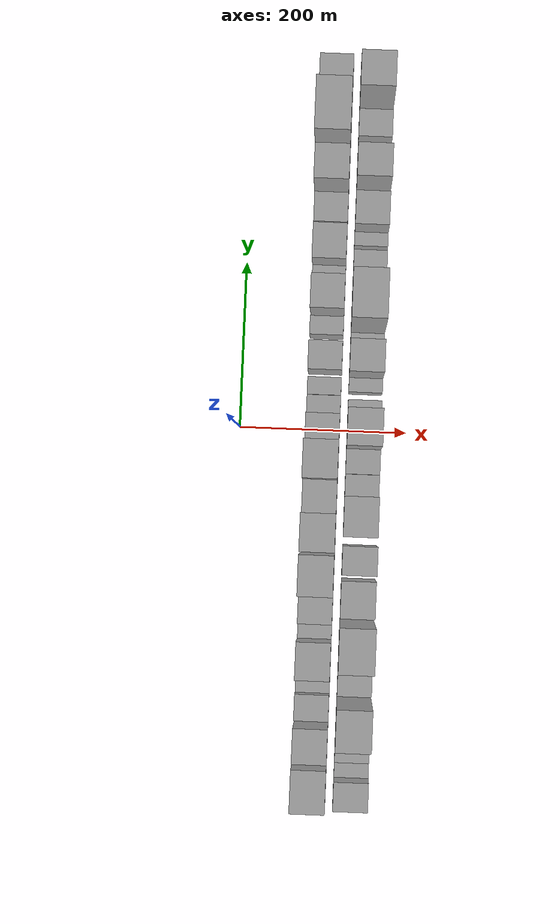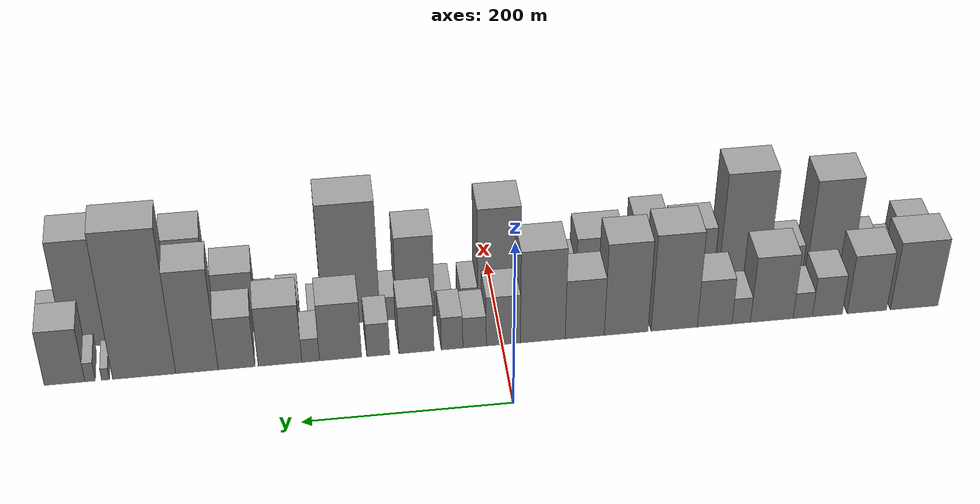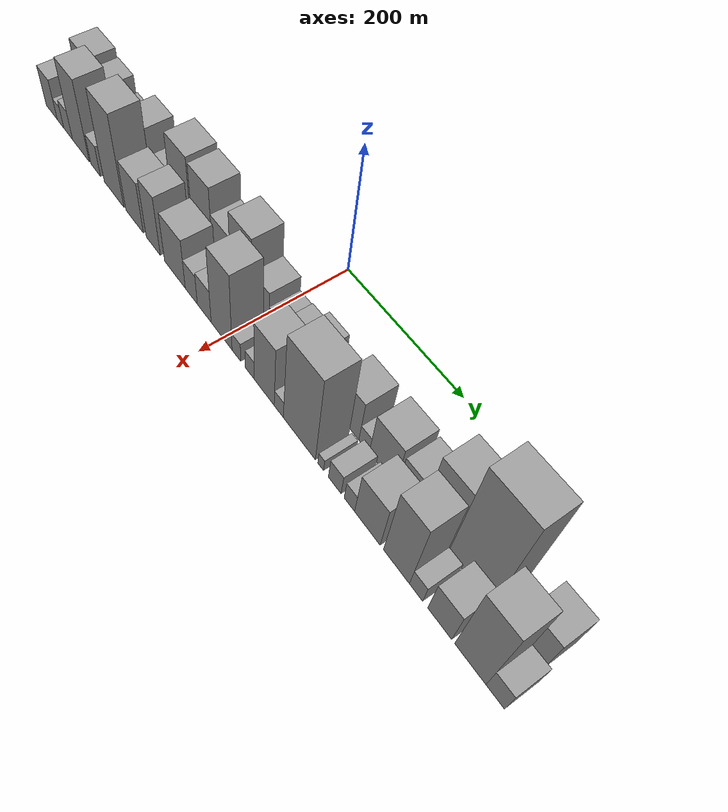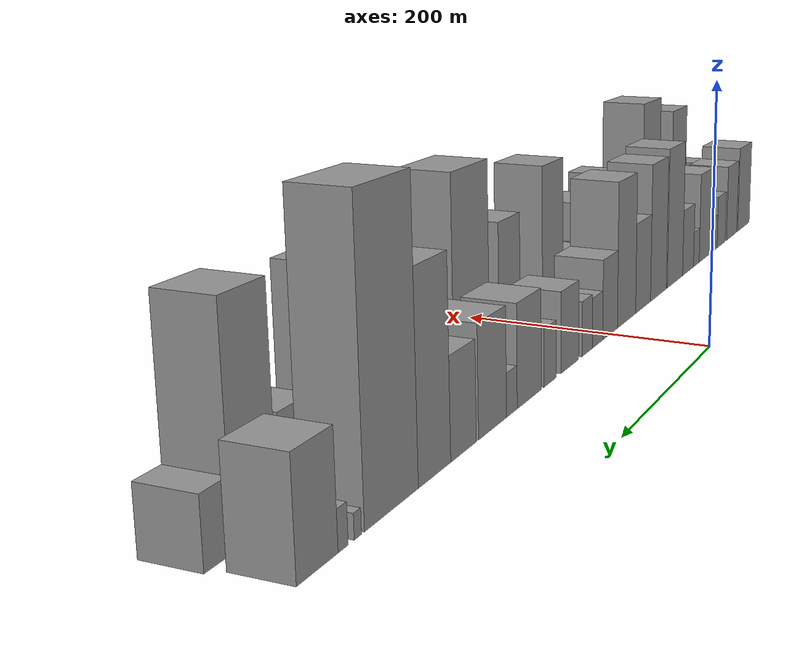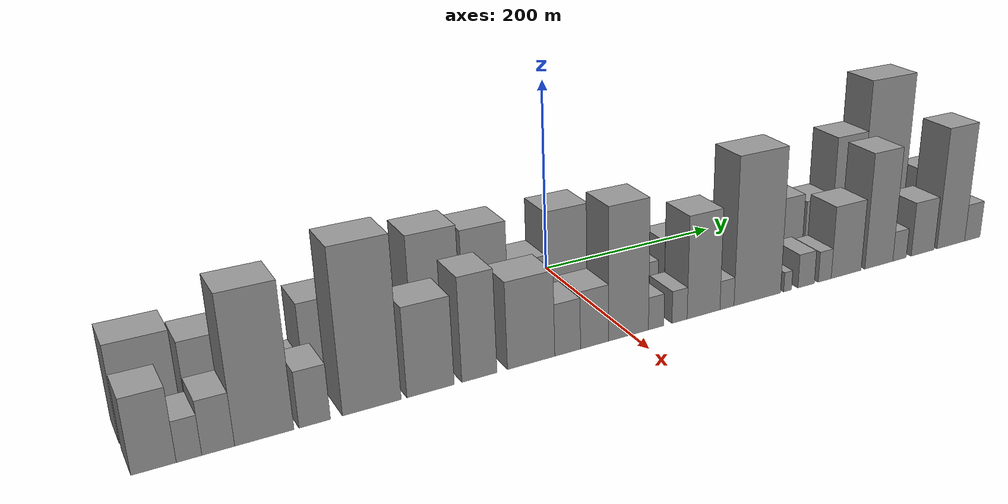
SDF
<sdf version="1.6">
 <world name="default">
  <scene>
   <sky><clouds><speed>12</speed></clouds></sky>
   <ambient>0.4 0.4 0.4 1</ambient>
   <background>0.7 0.7 0.7 1</background>
   <shadows>1</shadows>
  </scene>
  <gravity>0 0 -9.8066</gravity>
  <magnetic_field>6e-06 2.3e-05 -4.2e-05</magnetic_field>
  <physics default="0" name="default_physics" type="ode">
   <ode>
    <solver>
     <type>quick</type>
     <iters>10</iters>
     <sor>1.0</sor>
     <use_dynamic_moi_rescaling>0</use_dynamic_moi_rescaling>
    </solver>
    <constraints>
     <cfm>0</cfm>
     <erp>0.2</erp>
     <contact_max_correcting_vel>100</contact_max_correcting_vel>
     <contact_surface_layer>0.001</contact_surface_layer>
    </constraints>
   </ode>
   <max_step_size>0.004</max_step_size>
   <real_time_factor>1</real_time_factor>
   <real_time_update_rate>250</real_time_update_rate>
  </physics>
  <light name="sun" type="directional">
   <pose>0 0 10 0 0 0</pose>
   <diffuse>0.8 0.8 0.8 1</diffuse>
   <specular>0.2 0.2 0.2 1</specular>
   <attenuation>
    <range>1000</range>
    <constant>0.9</constant>
    <linear>0.01</linear>
    <quadratic>0.001</quadratic>
   </attenuation>
   <direction>-0.5 0.1 -0.9</direction>
  </light>
  <model name="building_1">
   <static>1</static>
   <pose>100.0000 -413.6553 0 0.000000 0.000000 0.000000</pose>
   <link name="link">
    <pose>0 0 43.50 0 0 0</pose>
    <collision name="collision"><geometry><box><size>40.0000 48.6893 87.0000</size></box></geometry></collision>
    <visual name="visual">
     <cast_shadows>0</cast_shadows>
     <geometry><box><size>40.0000 48.6893 87.0000</size></box></geometry>
     <material>
      <script>
       <uri>model://grey_wall/materials/scripts</uri>
       <uri>model://grey_wall/materials/textures</uri>
       <name>vrc/grey_wall</name>
      </script>
     </material>
    </visual>
   </link>
  </model>
  <model name="building_2">
   <static>1</static>
   <pose>100.0000 -365.2455 0 0.000000 0.000000 0.000000</pose>
   <link name="link">
    <pose>0 0 37.50 0 0 0</pose>
    <collision name="collision"><geometry><box><size>40.0000 40.1303 75.0000</size></box></geometry></collision>
    <visual name="visual">
     <cast_shadows>0</cast_shadows>
     <geometry><box><size>40.0000 40.1303 75.0000</size></box></geometry>
     <material>
      <script>
       <uri>model://grey_wall/materials/scripts</uri>
       <uri>model://grey_wall/materials/textures</uri>
       <name>vrc/grey_wall</name>
      </script>
     </material>
    </visual>
   </link>
  </model>
  <model name="building_3">
   <static>1</static>
   <pose>100.0000 -324.9084 0 0.000000 0.000000 0.000000</pose>
   <link name="link">
    <pose>0 0 25.50 0 0 0</pose>
    <collision name="collision"><geometry><box><size>40.0000 30.5440 51.0000</size></box></geometry></collision>
    <visual name="visual">
     <cast_shadows>0</cast_shadows>
     <geometry><box><size>40.0000 30.5440 51.0000</size></box></geometry>
     <material>
      <script>
       <uri>model://grey_wall/materials/scripts</uri>
       <uri>model://grey_wall/materials/textures</uri>
       <name>vrc/grey_wall</name>
      </script>
     </material>
    </visual>
   </link>
  </model>
  <model name="building_4">
   <static>1</static>
   <pose>100.0000 -299.9130 0 0.000000 0.000000 0.000000</pose>
   <link name="link">
    <pose>0 0 16.50 0 0 0</pose>
    <collision name="collision"><geometry><box><size>40.0000 19.4467 33.0000</size></box></geometry></collision>
    <visual name="visual">
     <cast_shadows>0</cast_shadows>
     <geometry><box><size>40.0000 19.4467 33.0000</size></box></geometry>
     <material>
      <script>
       <uri>model://grey_wall/materials/scripts</uri>
       <uri>model://grey_wall/materials/textures</uri>
       <name>vrc/grey_wall</name>
      </script>
     </material>
    </visual>
   </link>
  </model>
  <model name="building_5">
   <static>1</static>
   <pose>100.0000 -268.5683 0 0.000000 0.000000 0.000000</pose>
   <link name="link">
    <pose>0 0 42.00 0 0 0</pose>
    <collision name="collision"><geometry><box><size>40.0000 43.2427 84.0000</size></box></geometry></collision>
    <visual name="visual">
     <cast_shadows>0</cast_shadows>
     <geometry><box><size>40.0000 43.2427 84.0000</size></box></geometry>
     <material>
      <script>
       <uri>model://grey_wall/materials/scripts</uri>
       <uri>model://grey_wall/materials/textures</uri>
       <name>vrc/grey_wall</name>
      </script>
     </material>
    </visual>
   </link>
  </model>
  <model name="building_6">
   <static>1</static>
   <pose>100.0000 -237.6794 0 0.000000 0.000000 0.000000</pose>
   <link name="link">
    <pose>0 0 16.50 0 0 0</pose>
    <collision name="collision"><geometry><box><size>40.0000 18.5353 33.0000</size></box></geometry></collision>
    <visual name="visual">
     <cast_shadows>0</cast_shadows>
     <geometry><box><size>40.0000 18.5353 33.0000</size></box></geometry>
     <material>
      <script>
       <uri>model://grey_wall/materials/scripts</uri>
       <uri>model://grey_wall/materials/textures</uri>
       <name>vrc/grey_wall</name>
      </script>
     </material>
    </visual>
   </link>
  </model>
  <model name="building_7">
   <static>1</static>
   <pose>100.0000 -210.9721 0 0.000000 0.000000 0.000000</pose>
   <link name="link">
    <pose>0 0 30.00 0 0 0</pose>
    <collision name="collision"><geometry><box><size>40.0000 34.8792 60.0000</size></box></geometry></collision>
    <visual name="visual">
     <cast_shadows>0</cast_shadows>
     <geometry><box><size>40.0000 34.8792 60.0000</size></box></geometry>
     <material>
      <script>
       <uri>model://grey_wall/materials/scripts</uri>
       <uri>model://grey_wall/materials/textures</uri>
       <name>vrc/grey_wall</name>
      </script>
     </material>
    </visual>
   </link>
  </model>
  <model name="building_8">
   <static>1</static>
   <pose>100.0000 -170.4221 0 0.000000 0.000000 0.000000</pose>
   <link name="link">
    <pose>0 0 61.50 0 0 0</pose>
    <collision name="collision"><geometry><box><size>40.0000 46.2209 123.0000</size></box></geometry></collision>
    <visual name="visual">
     <cast_shadows>0</cast_shadows>
     <geometry><box><size>40.0000 46.2209 123.0000</size></box></geometry>
     <material>
      <script>
       <uri>model://grey_wall/materials/scripts</uri>
       <uri>model://grey_wall/materials/textures</uri>
       <name>vrc/grey_wall</name>
      </script>
     </material>
    </visual>
   </link>
  </model>
  <model name="building_9">
   <static>1</static>
   <pose>100.0000 -122.4812 0 0.000000 0.000000 0.000000</pose>
   <link name="link">
    <pose>0 0 58.50 0 0 0</pose>
    <collision name="collision"><geometry><box><size>40.0000 43.6609 117.0000</size></box></geometry></collision>
    <visual name="visual">
     <cast_shadows>0</cast_shadows>
     <geometry><box><size>40.0000 43.6609 117.0000</size></box></geometry>
     <material>
      <script>
       <uri>model://grey_wall/materials/scripts</uri>
       <uri>model://grey_wall/materials/textures</uri>
       <name>vrc/grey_wall</name>
      </script>
     </material>
    </visual>
   </link>
  </model>
  <model name="building_10">
   <static>1</static>
   <pose>100.0000 -81.2429 0 0.000000 0.000000 0.000000</pose>
   <link name="link">
    <pose>0 0 37.50 0 0 0</pose>
    <collision name="collision"><geometry><box><size>40.0000 38.8155 75.0000</size></box></geometry></collision>
    <visual name="visual">
     <cast_shadows>0</cast_shadows>
     <geometry><box><size>40.0000 38.8155 75.0000</size></box></geometry>
     <material>
      <script>
       <uri>model://grey_wall/materials/scripts</uri>
       <uri>model://grey_wall/materials/textures</uri>
       <name>vrc/grey_wall</name>
      </script>
     </material>
    </visual>
   </link>
  </model>
  <model name="building_11">
   <static>1</static>
   <pose>100.0000 -39.6553 0 0.000000 0.000000 0.000000</pose>
   <link name="link">
    <pose>0 0 58.50 0 0 0</pose>
    <collision name="collision"><geometry><box><size>40.0000 44.3598 117.0000</size></box></geometry></collision>
    <visual name="visual">
     <cast_shadows>0</cast_shadows>
     <geometry><box><size>40.0000 44.3598 117.0000</size></box></geometry>
     <material>
      <script>
       <uri>model://grey_wall/materials/scripts</uri>
       <uri>model://grey_wall/materials/textures</uri>
       <name>vrc/grey_wall</name>
      </script>
     </material>
    </visual>
   </link>
  </model>
  <model name="building_12">
   <static>1</static>
   <pose>100.0000 -0.7453 0 0.000000 0.000000 0.000000</pose>
   <link name="link">
    <pose>0 0 31.50 0 0 0</pose>
    <collision name="collision"><geometry><box><size>40.0000 33.4600 63.0000</size></box></geometry></collision>
    <visual name="visual">
     <cast_shadows>0</cast_shadows>
     <geometry><box><size>40.0000 33.4600 63.0000</size></box></geometry>
     <material>
      <script>
       <uri>model://grey_wall/materials/scripts</uri>
       <uri>model://grey_wall/materials/textures</uri>
       <name>vrc/grey_wall</name>
      </script>
     </material>
    </visual>
   </link>
  </model>
  <model name="building_13">
   <static>1</static>
   <pose>100.0000 27.4380 0 0.000000 0.000000 0.000000</pose>
   <link name="link">
    <pose>0 0 19.50 0 0 0</pose>
    <collision name="collision"><geometry><box><size>40.0000 22.9066 39.0000</size></box></geometry></collision>
    <visual name="visual">
     <cast_shadows>0</cast_shadows>
     <geometry><box><size>40.0000 22.9066 39.0000</size></box></geometry>
     <material>
      <script>
       <uri>model://grey_wall/materials/scripts</uri>
       <uri>model://grey_wall/materials/textures</uri>
       <name>vrc/grey_wall</name>
      </script>
     </material>
    </visual>
   </link>
  </model>
  <model name="building_14">
   <static>1</static>
   <pose>100.0000 49.4499 0 0.000000 0.000000 0.000000</pose>
   <link name="link">
    <pose>0 0 21.00 0 0 0</pose>
    <collision name="collision"><geometry><box><size>40.0000 21.1173 42.0000</size></box></geometry></collision>
    <visual name="visual">
     <cast_shadows>0</cast_shadows>
     <geometry><box><size>40.0000 21.1173 42.0000</size></box></geometry>
     <material>
      <script>
       <uri>model://grey_wall/materials/scripts</uri>
       <uri>model://grey_wall/materials/textures</uri>
       <name>vrc/grey_wall</name>
      </script>
     </material>
    </visual>
   </link>
  </model>
  <model name="building_15">
   <static>1</static>
   <pose>100.0000 84.1552 0 0.000000 0.000000 0.000000</pose>
   <link name="link">
    <pose>0 0 30.00 0 0 0</pose>
    <collision name="collision"><geometry><box><size>40.0000 34.2933 60.0000</size></box></geometry></collision>
    <visual name="visual">
     <cast_shadows>0</cast_shadows>
     <geometry><box><size>40.0000 34.2933 60.0000</size></box></geometry>
     <material>
      <script>
       <uri>model://grey_wall/materials/scripts</uri>
       <uri>model://grey_wall/materials/textures</uri>
       <name>vrc/grey_wall</name>
      </script>
     </material>
    </visual>
   </link>
  </model>
  <model name="building_16">
   <static>1</static>
   <pose>100.0000 121.4311 0 0.000000 0.000000 0.000000</pose>
   <link name="link">
    <pose>0 0 21.00 0 0 0</pose>
    <collision name="collision"><geometry><box><size>40.0000 22.2585 42.0000</size></box></geometry></collision>
    <visual name="visual">
     <cast_shadows>0</cast_shadows>
     <geometry><box><size>40.0000 22.2585 42.0000</size></box></geometry>
     <material>
      <script>
       <uri>model://grey_wall/materials/scripts</uri>
       <uri>model://grey_wall/materials/textures</uri>
       <name>vrc/grey_wall</name>
      </script>
     </material>
    </visual>
   </link>
  </model>
  <model name="building_17">
   <static>1</static>
   <pose>100.0000 157.9445 0 0.000000 0.000000 0.000000</pose>
   <link name="link">
    <pose>0 0 36.00 0 0 0</pose>
    <collision name="collision"><geometry><box><size>40.0000 40.7683 72.0000</size></box></geometry></collision>
    <visual name="visual">
     <cast_shadows>0</cast_shadows>
     <geometry><box><size>40.0000 40.7683 72.0000</size></box></geometry>
     <material>
      <script>
       <uri>model://grey_wall/materials/scripts</uri>
       <uri>model://grey_wall/materials/textures</uri>
       <name>vrc/grey_wall</name>
      </script>
     </material>
    </visual>
   </link>
  </model>
  <model name="building_18">
   <static>1</static>
   <pose>100.0000 186.8226 0 0.000000 0.000000 0.000000</pose>
   <link name="link">
    <pose>0 0 15.00 0 0 0</pose>
    <collision name="collision"><geometry><box><size>40.0000 16.9878 30.0000</size></box></geometry></collision>
    <visual name="visual">
     <cast_shadows>0</cast_shadows>
     <geometry><box><size>40.0000 16.9878 30.0000</size></box></geometry>
     <material>
      <script>
       <uri>model://grey_wall/materials/scripts</uri>
       <uri>model://grey_wall/materials/textures</uri>
       <name>vrc/grey_wall</name>
      </script>
     </material>
    </visual>
   </link>
  </model>
  <model name="building_19">
   <static>1</static>
   <pose>100.0000 216.3093 0 0.000000 0.000000 0.000000</pose>
   <link name="link">
    <pose>0 0 37.50 0 0 0</pose>
    <collision name="collision"><geometry><box><size>40.0000 41.9856 75.0000</size></box></geometry></collision>
    <visual name="visual">
     <cast_shadows>0</cast_shadows>
     <geometry><box><size>40.0000 41.9856 75.0000</size></box></geometry>
     <material>
      <script>
       <uri>model://grey_wall/materials/scripts</uri>
       <uri>model://grey_wall/materials/textures</uri>
       <name>vrc/grey_wall</name>
      </script>
     </material>
    </visual>
   </link>
  </model>
  <model name="building_20">
   <static>1</static>
   <pose>100.0000 257.9181 0 0.000000 0.000000 0.000000</pose>
   <link name="link">
    <pose>0 0 33.00 0 0 0</pose>
    <collision name="collision"><geometry><box><size>40.0000 35.2319 66.0000</size></box></geometry></collision>
    <visual name="visual">
     <cast_shadows>0</cast_shadows>
     <geometry><box><size>40.0000 35.2319 66.0000</size></box></geometry>
     <material>
      <script>
       <uri>model://grey_wall/materials/scripts</uri>
       <uri>model://grey_wall/materials/textures</uri>
       <name>vrc/grey_wall</name>
      </script>
     </material>
    </visual>
   </link>
  </model>
  <model name="building_21">
   <static>1</static>
   <pose>100.0000 295.8284 0 0.000000 0.000000 0.000000</pose>
   <link name="link">
    <pose>0 0 64.50 0 0 0</pose>
    <collision name="collision"><geometry><box><size>40.0000 40.5886 129.0000</size></box></geometry></collision>
    <visual name="visual">
     <cast_shadows>0</cast_shadows>
     <geometry><box><size>40.0000 40.5886 129.0000</size></box></geometry>
     <material>
      <script>
       <uri>model://grey_wall/materials/scripts</uri>
       <uri>model://grey_wall/materials/textures</uri>
       <name>vrc/grey_wall</name>
      </script>
     </material>
    </visual>
   </link>
  </model>
  <model name="building_22">
   <static>1</static>
   <pose>100.0000 346.0751 0 0.000000 0.000000 0.000000</pose>
   <link name="link">
    <pose>0 0 91.50 0 0 0</pose>
    <collision name="collision"><geometry><box><size>40.0000 59.9049 183.0000</size></box></geometry></collision>
    <visual name="visual">
     <cast_shadows>0</cast_shadows>
     <geometry><box><size>40.0000 59.9049 183.0000</size></box></geometry>
     <material>
      <script>
       <uri>model://grey_wall/materials/scripts</uri>
       <uri>model://grey_wall/materials/textures</uri>
       <name>vrc/grey_wall</name>
      </script>
     </material>
    </visual>
   </link>
  </model>
  <model name="building_23">
   <static>1</static>
   <pose>100.0000 382.7169 0 0.000000 0.000000 0.000000</pose>
   <link name="link">
    <pose>0 0 7.50 0 0 0</pose>
    <collision name="collision"><geometry><box><size>40.0000 7.3787 15.0000</size></box></geometry></collision>
    <visual name="visual">
     <cast_shadows>0</cast_shadows>
     <geometry><box><size>40.0000 7.3787 15.0000</size></box></geometry>
     <material>
      <script>
       <uri>model://grey_wall/materials/scripts</uri>
       <uri>model://grey_wall/materials/textures</uri>
       <name>vrc/grey_wall</name>
      </script>
     </material>
    </visual>
   </link>
  </model>
  <model name="building_24">
   <static>1</static>
   <pose>100.0000 397.3403 0 0.000000 0.000000 0.000000</pose>
   <link name="link">
    <pose>0 0 12.00 0 0 0</pose>
    <collision name="collision"><geometry><box><size>40.0000 9.8680 24.0000</size></box></geometry></collision>
    <visual name="visual">
     <cast_shadows>0</cast_shadows>
     <geometry><box><size>40.0000 9.8680 24.0000</size></box></geometry>
     <material>
      <script>
       <uri>model://grey_wall/materials/scripts</uri>
       <uri>model://grey_wall/materials/textures</uri>
       <name>vrc/grey_wall</name>
      </script>
     </material>
    </visual>
   </link>
  </model>
  <model name="building_25">
   <static>1</static>
   <pose>100.0000 421.3536 0 0.000000 0.000000 0.000000</pose>
   <link name="link">
    <pose>0 0 34.50 0 0 0</pose>
    <collision name="collision"><geometry><box><size>40.0000 38.1586 69.0000</size></box></geometry></collision>
    <visual name="visual">
     <cast_shadows>0</cast_shadows>
     <geometry><box><size>40.0000 38.1586 69.0000</size></box></geometry>
     <material>
      <script>
       <uri>model://grey_wall/materials/scripts</uri>
       <uri>model://grey_wall/materials/textures</uri>
       <name>vrc/grey_wall</name>
      </script>
     </material>
    </visual>
   </link>
  </model>
  <model name="building_26">
   <static>1</static>
   <pose>149.0000 -421.4906 0 0.000000 0.000000 0.000000</pose>
   <link name="link">
    <pose>0 0 33.00 0 0 0</pose>
    <collision name="collision"><geometry><box><size>40.0000 33.0188 66.0000</size></box></geometry></collision>
    <visual name="visual">
     <cast_shadows>0</cast_shadows>
     <geometry><box><size>40.0000 33.0188 66.0000</size></box></geometry>
     <material>
      <script>
       <uri>model://grey_wall/materials/scripts</uri>
       <uri>model://grey_wall/materials/textures</uri>
       <name>vrc/grey_wall</name>
      </script>
     </material>
    </visual>
   </link>
  </model>
  <model name="building_27">
   <static>1</static>
   <pose>149.0000 -395.5111 0 0.000000 0.000000 0.000000</pose>
   <link name="link">
    <pose>0 0 18.00 0 0 0</pose>
    <collision name="collision"><geometry><box><size>40.0000 18.9402 36.0000</size></box></geometry></collision>
    <visual name="visual">
     <cast_shadows>0</cast_shadows>
     <geometry><box><size>40.0000 18.9402 36.0000</size></box></geometry>
     <material>
      <script>
       <uri>model://grey_wall/materials/scripts</uri>
       <uri>model://grey_wall/materials/textures</uri>
       <name>vrc/grey_wall</name>
      </script>
     </material>
    </visual>
   </link>
  </model>
  <model name="building_28">
   <static>1</static>
   <pose>149.0000 -373.5439 0 0.000000 0.000000 0.000000</pose>
   <link name="link">
    <pose>0 0 24.00 0 0 0</pose>
    <collision name="collision"><geometry><box><size>40.0000 24.9943 48.0000</size></box></geometry></collision>
    <visual name="visual">
     <cast_shadows>0</cast_shadows>
     <geometry><box><size>40.0000 24.9943 48.0000</size></box></geometry>
     <material>
      <script>
       <uri>model://grey_wall/materials/scripts</uri>
       <uri>model://grey_wall/materials/textures</uri>
       <name>vrc/grey_wall</name>
      </script>
     </material>
    </visual>
   </link>
  </model>
  <model name="building_29">
   <static>1</static>
   <pose>149.0000 -337.7166 0 0.000000 0.000000 0.000000</pose>
   <link name="link">
    <pose>0 0 66.00 0 0 0</pose>
    <collision name="collision"><geometry><box><size>40.0000 46.6603 132.0000</size></box></geometry></collision>
    <visual name="visual">
     <cast_shadows>0</cast_shadows>
     <geometry><box><size>40.0000 46.6603 132.0000</size></box></geometry>
     <material>
      <script>
       <uri>model://grey_wall/materials/scripts</uri>
       <uri>model://grey_wall/materials/textures</uri>
       <name>vrc/grey_wall</name>
      </script>
     </material>
    </visual>
   </link>
  </model>
  <model name="building_30">
   <static>1</static>
   <pose>149.0000 -297.4726 0 0.000000 0.000000 0.000000</pose>
   <link name="link">
    <pose>0 0 25.50 0 0 0</pose>
    <collision name="collision"><geometry><box><size>40.0000 25.8277 51.0000</size></box></geometry></collision>
    <visual name="visual">
     <cast_shadows>0</cast_shadows>
     <geometry><box><size>40.0000 25.8277 51.0000</size></box></geometry>
     <material>
      <script>
       <uri>model://grey_wall/materials/scripts</uri>
       <uri>model://grey_wall/materials/textures</uri>
       <name>vrc/grey_wall</name>
      </script>
     </material>
    </visual>
   </link>
  </model>
  <model name="building_31">
   <static>1</static>
   <pose>149.0000 -249.3215 0 0.000000 0.000000 0.000000</pose>
   <link name="link">
    <pose>0 0 75.00 0 0 0</pose>
    <collision name="collision"><geometry><box><size>40.0000 50.4745 150.0000</size></box></geometry></collision>
    <visual name="visual">
     <cast_shadows>0</cast_shadows>
     <geometry><box><size>40.0000 50.4745 150.0000</size></box></geometry>
     <material>
      <script>
       <uri>model://grey_wall/materials/scripts</uri>
       <uri>model://grey_wall/materials/textures</uri>
       <name>vrc/grey_wall</name>
      </script>
     </material>
    </visual>
   </link>
  </model>
  <model name="building_32">
   <static>1</static>
   <pose>149.0000 -197.7166 0 0.000000 0.000000 0.000000</pose>
   <link name="link">
    <pose>0 0 42.00 0 0 0</pose>
    <collision name="collision"><geometry><box><size>40.0000 42.7352 84.0000</size></box></geometry></collision>
    <visual name="visual">
     <cast_shadows>0</cast_shadows>
     <geometry><box><size>40.0000 42.7352 84.0000</size></box></geometry>
     <material>
      <script>
       <uri>model://grey_wall/materials/scripts</uri>
       <uri>model://grey_wall/materials/textures</uri>
       <name>vrc/grey_wall</name>
      </script>
     </material>
    </visual>
   </link>
  </model>
  <model name="building_33">
   <static>1</static>
   <pose>149.0000 -152.8325 0 0.000000 0.000000 0.000000</pose>
   <link name="link">
    <pose>0 0 49.50 0 0 0</pose>
    <collision name="collision"><geometry><box><size>40.0000 33.0331 99.0000</size></box></geometry></collision>
    <visual name="visual">
     <cast_shadows>0</cast_shadows>
     <geometry><box><size>40.0000 33.0331 99.0000</size></box></geometry>
     <material>
      <script>
       <uri>model://grey_wall/materials/scripts</uri>
       <uri>model://grey_wall/materials/textures</uri>
       <name>vrc/grey_wall</name>
      </script>
     </material>
    </visual>
   </link>
  </model>
  <model name="building_34">
   <static>1</static>
   <pose>149.0000 -103.0386 0 0.000000 0.000000 0.000000</pose>
   <link name="link">
    <pose>0 0 42.00 0 0 0</pose>
    <collision name="collision"><geometry><box><size>40.0000 46.5549 84.0000</size></box></geometry></collision>
    <visual name="visual">
     <cast_shadows>0</cast_shadows>
     <geometry><box><size>40.0000 46.5549 84.0000</size></box></geometry>
     <material>
      <script>
       <uri>model://grey_wall/materials/scripts</uri>
       <uri>model://grey_wall/materials/textures</uri>
       <name>vrc/grey_wall</name>
      </script>
     </material>
    </visual>
   </link>
  </model>
  <model name="building_35">
   <static>1</static>
   <pose>149.0000 -66.7099 0 0.000000 0.000000 0.000000</pose>
   <link name="link">
    <pose>0 0 25.50 0 0 0</pose>
    <collision name="collision"><geometry><box><size>40.0000 26.1024 51.0000</size></box></geometry></collision>
    <visual name="visual">
     <cast_shadows>0</cast_shadows>
     <geometry><box><size>40.0000 26.1024 51.0000</size></box></geometry>
     <material>
      <script>
       <uri>model://grey_wall/materials/scripts</uri>
       <uri>model://grey_wall/materials/textures</uri>
       <name>vrc/grey_wall</name>
      </script>
     </material>
    </visual>
   </link>
  </model>
  <model name="building_36">
   <static>1</static>
   <pose>149.0000 -38.9653 0 0.000000 0.000000 0.000000</pose>
   <link name="link">
    <pose>0 0 28.50 0 0 0</pose>
    <collision name="collision"><geometry><box><size>40.0000 29.3869 57.0000</size></box></geometry></collision>
    <visual name="visual">
     <cast_shadows>0</cast_shadows>
     <geometry><box><size>40.0000 29.3869 57.0000</size></box></geometry>
     <material>
      <script>
       <uri>model://grey_wall/materials/scripts</uri>
       <uri>model://grey_wall/materials/textures</uri>
       <name>vrc/grey_wall</name>
      </script>
     </material>
    </visual>
   </link>
  </model>
  <model name="building_37">
   <static>1</static>
   <pose>149.0000 -2.9895 0 0.000000 0.000000 0.000000</pose>
   <link name="link">
    <pose>0 0 66.00 0 0 0</pose>
    <collision name="collision"><geometry><box><size>40.0000 42.5646 132.0000</size></box></geometry></collision>
    <visual name="visual">
     <cast_shadows>0</cast_shadows>
     <geometry><box><size>40.0000 42.5646 132.0000</size></box></geometry>
     <material>
      <script>
       <uri>model://grey_wall/materials/scripts</uri>
       <uri>model://grey_wall/materials/textures</uri>
       <name>vrc/grey_wall</name>
      </script>
     </material>
    </visual>
   </link>
  </model>
  <model name="building_38">
   <static>1</static>
   <pose>149.0000 26.8142 0 0.000000 0.000000 0.000000</pose>
   <link name="link">
    <pose>0 0 16.50 0 0 0</pose>
    <collision name="collision"><geometry><box><size>40.0000 17.0428 33.0000</size></box></geometry></collision>
    <visual name="visual">
     <cast_shadows>0</cast_shadows>
     <geometry><box><size>40.0000 17.0428 33.0000</size></box></geometry>
     <material>
      <script>
       <uri>model://grey_wall/materials/scripts</uri>
       <uri>model://grey_wall/materials/textures</uri>
       <name>vrc/grey_wall</name>
      </script>
     </material>
    </visual>
   </link>
  </model>
  <model name="building_39">
   <static>1</static>
   <pose>149.0000 52.8453 0 0.000000 0.000000 0.000000</pose>
   <link name="link">
    <pose>0 0 16.50 0 0 0</pose>
    <collision name="collision"><geometry><box><size>40.0000 17.0194 33.0000</size></box></geometry></collision>
    <visual name="visual">
     <cast_shadows>0</cast_shadows>
     <geometry><box><size>40.0000 17.0194 33.0000</size></box></geometry>
     <material>
      <script>
       <uri>model://grey_wall/materials/scripts</uri>
       <uri>model://grey_wall/materials/textures</uri>
       <name>vrc/grey_wall</name>
      </script>
     </material>
    </visual>
   </link>
  </model>
  <model name="building_40">
   <static>1</static>
   <pose>149.0000 80.2099 0 0.000000 0.000000 0.000000</pose>
   <link name="link">
    <pose>0 0 52.50 0 0 0</pose>
    <collision name="collision"><geometry><box><size>40.0000 37.7097 105.0000</size></box></geometry></collision>
    <visual name="visual">
     <cast_shadows>0</cast_shadows>
     <geometry><box><size>40.0000 37.7097 105.0000</size></box></geometry>
     <material>
      <script>
       <uri>model://grey_wall/materials/scripts</uri>
       <uri>model://grey_wall/materials/textures</uri>
       <name>vrc/grey_wall</name>
      </script>
     </material>
    </visual>
   </link>
  </model>
  <model name="building_41">
   <static>1</static>
   <pose>149.0000 107.3474 0 0.000000 0.000000 0.000000</pose>
   <link name="link">
    <pose>0 0 15.00 0 0 0</pose>
    <collision name="collision"><geometry><box><size>40.0000 16.5652 30.0000</size></box></geometry></collision>
    <visual name="visual">
     <cast_shadows>0</cast_shadows>
     <geometry><box><size>40.0000 16.5652 30.0000</size></box></geometry>
     <material>
      <script>
       <uri>model://grey_wall/materials/scripts</uri>
       <uri>model://grey_wall/materials/textures</uri>
       <name>vrc/grey_wall</name>
      </script>
     </material>
    </visual>
   </link>
  </model>
  <model name="building_42">
   <static>1</static>
   <pose>149.0000 143.8229 0 0.000000 0.000000 0.000000</pose>
   <link name="link">
    <pose>0 0 76.50 0 0 0</pose>
    <collision name="collision"><geometry><box><size>40.0000 56.3859 153.0000</size></box></geometry></collision>
    <visual name="visual">
     <cast_shadows>0</cast_shadows>
     <geometry><box><size>40.0000 56.3859 153.0000</size></box></geometry>
     <material>
      <script>
       <uri>model://grey_wall/materials/scripts</uri>
       <uri>model://grey_wall/materials/textures</uri>
       <name>vrc/grey_wall</name>
      </script>
     </material>
    </visual>
   </link>
  </model>
  <model name="building_43">
   <static>1</static>
   <pose>149.0000 180.9305 0 0.000000 0.000000 0.000000</pose>
   <link name="link">
    <pose>0 0 10.50 0 0 0</pose>
    <collision name="collision"><geometry><box><size>40.0000 9.8292 21.0000</size></box></geometry></collision>
    <visual name="visual">
     <cast_shadows>0</cast_shadows>
     <geometry><box><size>40.0000 9.8292 21.0000</size></box></geometry>
     <material>
      <script>
       <uri>model://grey_wall/materials/scripts</uri>
       <uri>model://grey_wall/materials/textures</uri>
       <name>vrc/grey_wall</name>
      </script>
     </material>
    </visual>
   </link>
  </model>
  <model name="building_44">
   <static>1</static>
   <pose>149.0000 204.2857 0 0.000000 0.000000 0.000000</pose>
   <link name="link">
    <pose>0 0 18.00 0 0 0</pose>
    <collision name="collision"><geometry><box><size>40.0000 20.8811 36.0000</size></box></geometry></collision>
    <visual name="visual">
     <cast_shadows>0</cast_shadows>
     <geometry><box><size>40.0000 20.8811 36.0000</size></box></geometry>
     <material>
      <script>
       <uri>model://grey_wall/materials/scripts</uri>
       <uri>model://grey_wall/materials/textures</uri>
       <name>vrc/grey_wall</name>
      </script>
     </material>
    </visual>
   </link>
  </model>
  <model name="building_45">
   <static>1</static>
   <pose>149.0000 228.1001 0 0.000000 0.000000 0.000000</pose>
   <link name="link">
    <pose>0 0 16.50 0 0 0</pose>
    <collision name="collision"><geometry><box><size>40.0000 16.7478 33.0000</size></box></geometry></collision>
    <visual name="visual">
     <cast_shadows>0</cast_shadows>
     <geometry><box><size>40.0000 16.7478 33.0000</size></box></geometry>
     <material>
      <script>
       <uri>model://grey_wall/materials/scripts</uri>
       <uri>model://grey_wall/materials/textures</uri>
       <name>vrc/grey_wall</name>
      </script>
     </material>
    </visual>
   </link>
  </model>
  <model name="building_46">
   <static>1</static>
   <pose>149.0000 256.2906 0 0.000000 0.000000 0.000000</pose>
   <link name="link">
    <pose>0 0 39.00 0 0 0</pose>
    <collision name="collision"><geometry><box><size>40.0000 39.6331 78.0000</size></box></geometry></collision>
    <visual name="visual">
     <cast_shadows>0</cast_shadows>
     <geometry><box><size>40.0000 39.6331 78.0000</size></box></geometry>
     <material>
      <script>
       <uri>model://grey_wall/materials/scripts</uri>
       <uri>model://grey_wall/materials/textures</uri>
       <name>vrc/grey_wall</name>
      </script>
     </material>
    </visual>
   </link>
  </model>
  <model name="building_47">
   <static>1</static>
   <pose>149.0000 300.2630 0 0.000000 0.000000 0.000000</pose>
   <link name="link">
    <pose>0 0 63.00 0 0 0</pose>
    <collision name="collision"><geometry><box><size>40.0000 38.3118 126.0000</size></box></geometry></collision>
    <visual name="visual">
     <cast_shadows>0</cast_shadows>
     <geometry><box><size>40.0000 38.3118 126.0000</size></box></geometry>
     <material>
      <script>
       <uri>model://grey_wall/materials/scripts</uri>
       <uri>model://grey_wall/materials/textures</uri>
       <name>vrc/grey_wall</name>
      </script>
     </material>
    </visual>
   </link>
  </model>
  <model name="building_48">
   <static>1</static>
   <pose>149.0000 328.8470 0 0.000000 0.000000 0.000000</pose>
   <link name="link">
    <pose>0 0 16.50 0 0 0</pose>
    <collision name="collision"><geometry><box><size>40.0000 18.8561 33.0000</size></box></geometry></collision>
    <visual name="visual">
     <cast_shadows>0</cast_shadows>
     <geometry><box><size>40.0000 18.8561 33.0000</size></box></geometry>
     <material>
      <script>
       <uri>model://grey_wall/materials/scripts</uri>
       <uri>model://grey_wall/materials/textures</uri>
       <name>vrc/grey_wall</name>
      </script>
     </material>
    </visual>
   </link>
  </model>
  <model name="building_49">
   <static>1</static>
   <pose>149.0000 361.7642 0 0.000000 0.000000 0.000000</pose>
   <link name="link">
    <pose>0 0 30.00 0 0 0</pose>
    <collision name="collision"><geometry><box><size>40.0000 32.9784 60.0000</size></box></geometry></collision>
    <visual name="visual">
     <cast_shadows>0</cast_shadows>
     <geometry><box><size>40.0000 32.9784 60.0000</size></box></geometry>
     <material>
      <script>
       <uri>model://grey_wall/materials/scripts</uri>
       <uri>model://grey_wall/materials/textures</uri>
       <name>vrc/grey_wall</name>
      </script>
     </material>
    </visual>
   </link>
  </model>
  <model name="building_50">
   <static>1</static>
   <pose>149.0000 402.6870 0 0.000000 0.000000 0.000000</pose>
   <link name="link">
    <pose>0 0 67.50 0 0 0</pose>
    <collision name="collision"><geometry><box><size>40.0000 40.8671 135.0000</size></box></geometry></collision>
    <visual name="visual">
     <cast_shadows>0</cast_shadows>
     <geometry><box><size>40.0000 40.8671 135.0000</size></box></geometry>
     <material>
      <script>
       <uri>model://grey_wall/materials/scripts</uri>
       <uri>model://grey_wall/materials/textures</uri>
       <name>vrc/grey_wall</name>
      </script>
     </material>
    </visual>
   </link>
  </model>
  <model name="building_51">
   <static>1</static>
   <pose>149.0000 434.7063 0 0.000000 0.000000 0.000000</pose>
   <link name="link">
    <pose>0 0 21.00 0 0 0</pose>
    <collision name="collision"><geometry><box><size>40.0000 23.1716 42.0000</size></box></geometry></collision>
    <visual name="visual">
     <cast_shadows>0</cast_shadows>
     <geometry><box><size>40.0000 23.1716 42.0000</size></box></geometry>
     <material>
      <script>
       <uri>model://grey_wall/materials/scripts</uri>
       <uri>model://grey_wall/materials/textures</uri>
       <name>vrc/grey_wall</name>
      </script>
     </material>
    </visual>
   </link>
  </model>
 </world>
</sdf>
